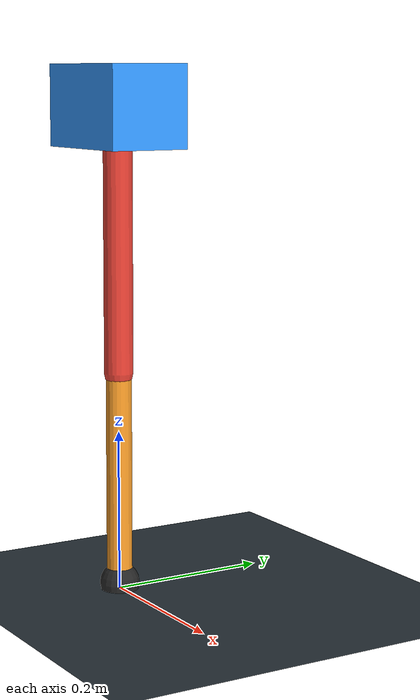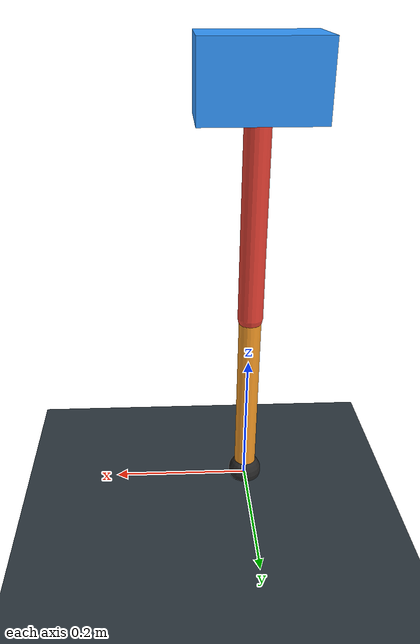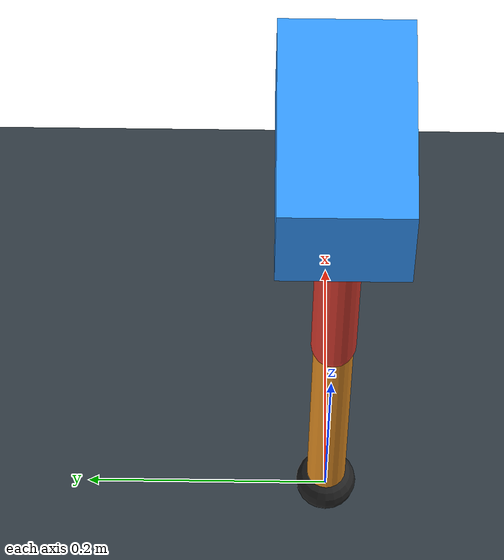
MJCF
<mujoco model="single_axis_two_bar">
  <compiler angle="radian" inertiafromgeom="true"/>
  <option timestep="0.001" integrator="implicitfast" gravity="0 0 -9.81"/>
  <default>
    <joint damping="0.08"/>
    <geom friction="1.2 0.01 0.0001" condim="3"/>
  </default>
  <worldbody>
    <geom name="floor" type="plane" size="5 5 0.1" rgba="0.18 0.22 0.25 1"/>
    <body name="carriage" pos="0 0 0.5995442844662507">
      <joint name="pole_slide" type="slide" axis="0 0 1"/>
      <geom name="payload" type="box" size="0.08 0.05 0.05" mass="2.428178837027545" rgba="0.2 0.6 1 1"/>
      <body name="thigh" pos="0 0 0">
        <joint name="hip" type="hinge" axis="0 1 0"/>
        <geom name="thigh_link" type="capsule" fromto="0 0 0 0 0 -0.3257661158430908" size="0.018" mass="0.23211266215763354" rgba="0.9 0.25 0.2 1"/>
        <body name="shank" pos="0 0 -0.3257661158430908">
          <joint name="knee" type="hinge" axis="0 1 0"/>
          <geom name="shank_link" type="capsule" fromto="0 0 0 0 0 -0.26654757948294094" size="0.016" mass="0.18991867249710778" rgba="0.95 0.6 0.15 1"/>
          <geom name="foot" type="sphere" pos="0 0 -0.26654757948294094" size="0.025" mass="0.03" rgba="0.15 0.15 0.15 1"/>
          <site name="toe" pos="0 0 -0.26654757948294094" size="0.008"/>
        </body>
      </body>
    </body>
  </worldbody>
  <actuator>
    <motor name="hip_motor" joint="hip" ctrlrange="-30.984961777530977 30.984961777530977"/>
    <motor name="knee_motor" joint="knee" ctrlrange="-104.9180793329421 104.9180793329421"/>
  </actuator>
</mujoco>
